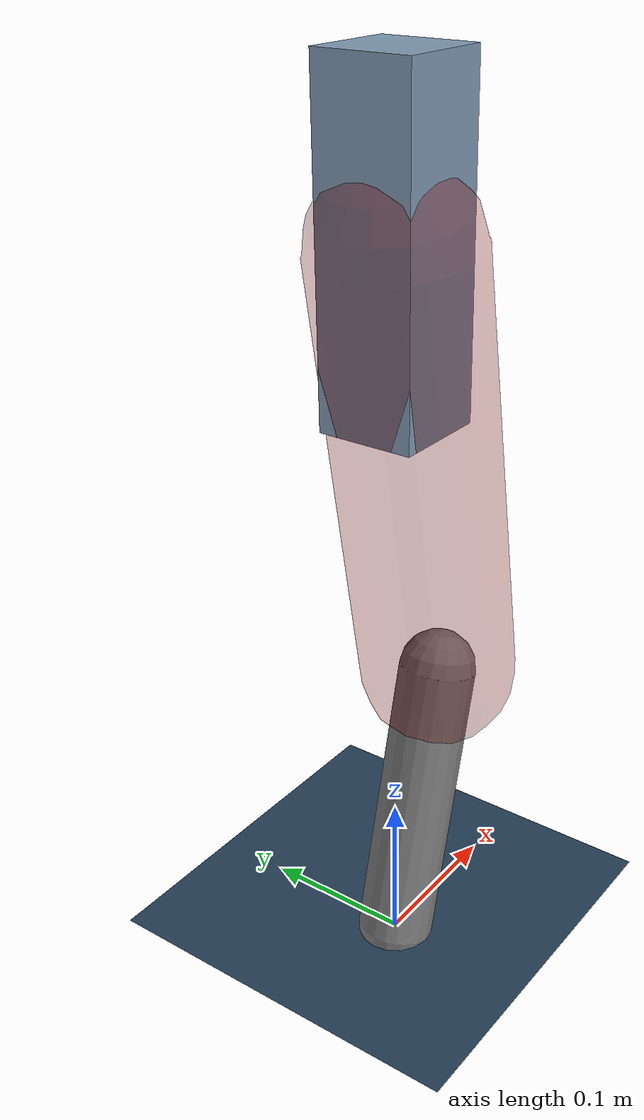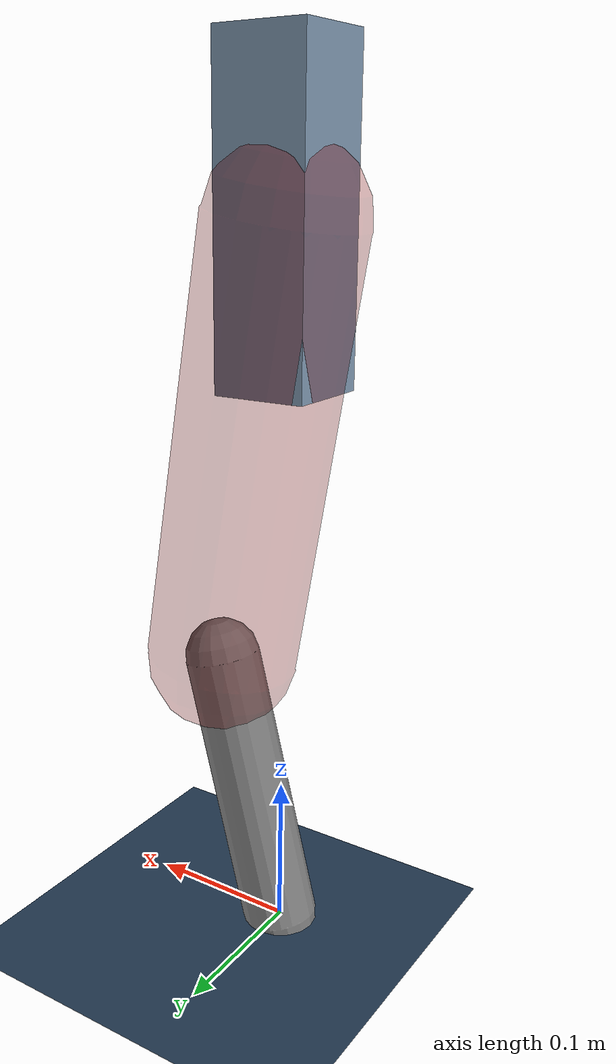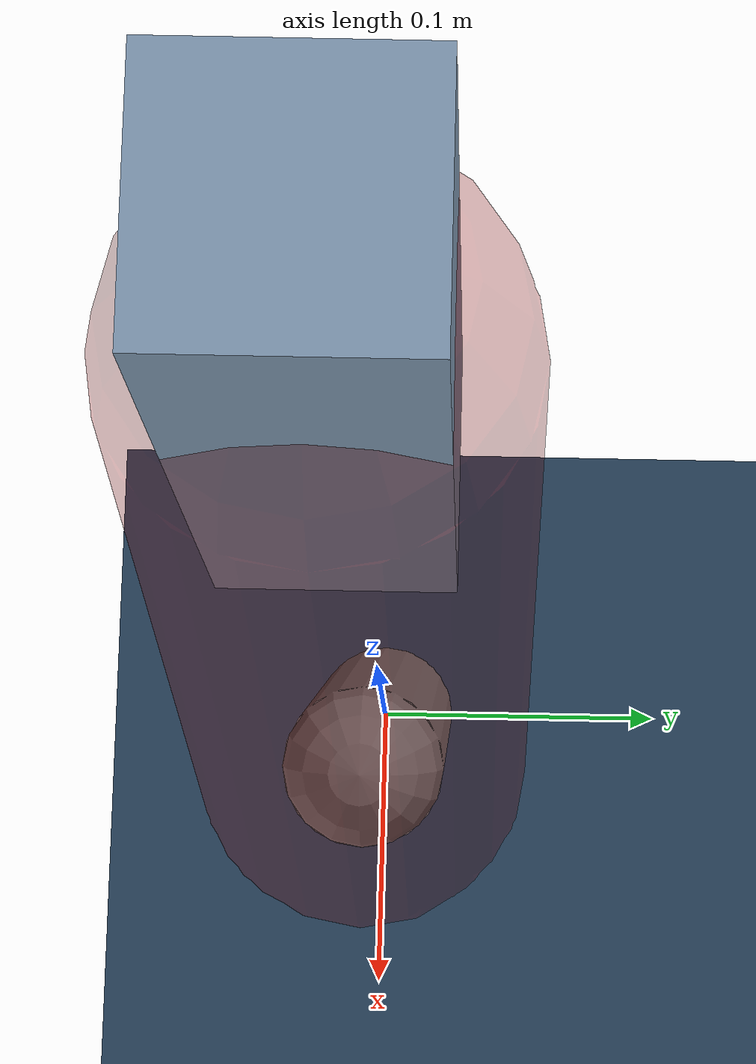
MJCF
<mujoco model="Hopper2D">
	<compiler inertiafromgeom="true" angle="radian" />
	<option timestep="0.001" integrator="implicit" cone="elliptic" solver="Newton" tolerance="1e-10" />

	<default>
		<geom contype="1" conaffinity="1" condim="3" friction="2 0.005 0.0001" solref="0.005 1" />
		<joint limited="true" damping="0.1" />
	</default>

	<asset>
		<texture name="skybox" type="skybox" builtin="gradient" rgb1=".4 .6 .8" rgb2="0 0 0" width="800" height="800" />
		<texture name="grid" type="2d" builtin="checker" rgb1=".1 .2 .3" rgb2=".2 .3 .4" width="300" height="300" mark="edge" markrgb=".2 .3 .4" />
		<material name="ground" texture="grid" texrepeat="1 1" texuniform="true" reflectance="0.1" />
		<material name="leg" rgba="0.5 0.6 0.7 1" />
	</asset>

	<worldbody>

		<geom name="floor" type="plane" size="5 5 0.25" material="ground" />

		<light directional="false" diffuse="0.8 0.8 0.8" specular="0.3 0.3 0.3" pos="0 0 2" dir="0 0 -1" />
		<light mode="targetbodycom" target="base" directional="false" diffuse="0.8 0.8 0.8" specular="0.3 0.3 0.3" pos="0 0 2" dir="0 0 -1" />

		<camera name="fixed" pos="0 -2 1" xyaxes="1 0 0 0 0 1" />
		<camera name="tracking" mode="trackcom" pos="0 -3 1" />

		<body name="root" pos="0 0 0.46444140339858">
			<joint name="slide_x" type="slide" axis="1 0 0" range="-100 100" />
			<joint name="slide_z" type="slide" axis="0 0 1" range="0 10" />

			<body name="base" pos="0 0 0">
				<geom name="torso" type="box" size="0.03 0.03 0.1" mass="1.943" material="leg" />

				<body name="link1" pos="0 0 0" euler="0 1.4035924418738068 0">
					<joint type="hinge" axis="0 -1 0" pos="0 0 0" name="hinge1" limited="true" range="-3.14 3.14" stiffness="0" damping="0.1" />
					<geom name="thigh" type="capsule" fromto="0 0 0 0.28490509246489226 0 0" size="0.05" rgba="0.5 0 0 0.3" mass="0.94815324040872" />

					<body name="link2" pos="0.28490509246489226 0 0" euler="0 0.42005581018689486 0">
						<joint type="hinge" axis="0 -1 0" pos="0 0 0" name="hinge2" limited="true" range="-3.14 3.14" stiffness="0" damping="0.1" />
						<geom name="shank" type="capsule" fromto="0 0 0 0.18953631093368775 0 0" size="0.025" mass="0.3920290487469502" />

					</body>
				</body>
			</body>
		</body>
	</worldbody>

	<actuator>
		<motor name="torque1" joint="hinge1" ctrlrange="-70.65975942345231 70.65975942345231" ctrllimited="true" gear="1" />
		<motor name="torque2" joint="hinge2" ctrlrange="-64.33881090714279 64.33881090714279" ctrllimited="true" gear="1" />
	</actuator>
</mujoco>
